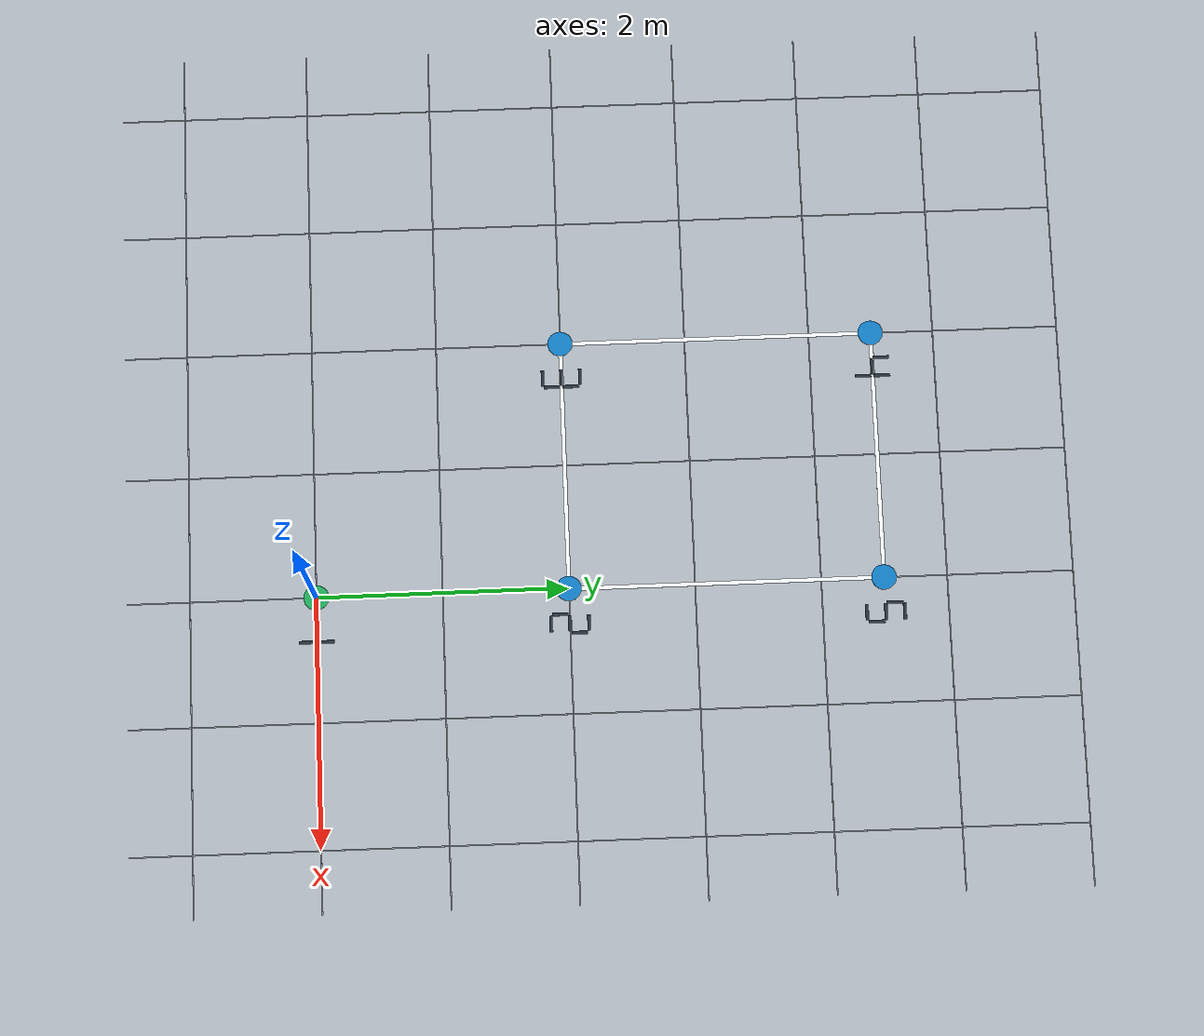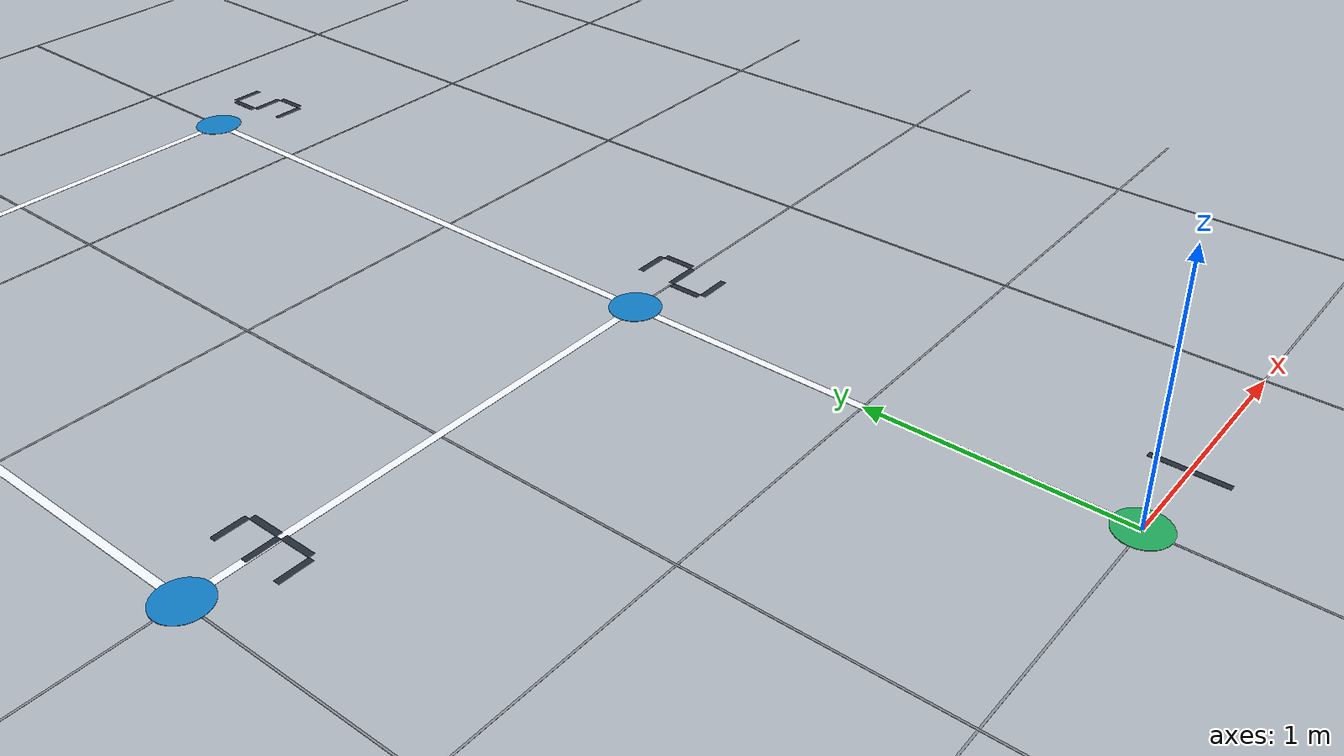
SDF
<?xml version='1.0' encoding='utf-8'?>
<sdf version="1.9">
  <world name="hamr_waypoints">
    <physics name="caster_dart" type="ignored">
      <max_step_size>0.001</max_step_size>
      <real_time_factor>0.5</real_time_factor>
      <dart>
        <collision_detector>ode</collision_detector>
        <solver>
          <solver_type>dantzig</solver_type>
        </solver>
      </dart>
    </physics>
    <gravity>0 0 -9.80665</gravity>
    <plugin filename="gz-sim-physics-system" name="gz::sim::systems::Physics">
      <engine>
        <filename>gz-physics-dartsim-plugin</filename>
      </engine>
    </plugin>
    <plugin filename="gz-sim-user-commands-system" name="gz::sim::systems::UserCommands" />
    <plugin filename="gz-sim-scene-broadcaster-system" name="gz::sim::systems::SceneBroadcaster" />
    <plugin filename="gz-sim-contact-system" name="gz::sim::systems::Contact" />
    <scene>
      <ambient>0.6 0.6 0.6 1</ambient>
      <background>0.17 0.20 0.25 1</background>
      <shadows>false</shadows>
    </scene>
    <model name="ground_plane">
      <static>true</static>
      <link name="ground">
        <collision name="ground_collision">
          <geometry>
            <plane>
              <normal>0 0 1</normal>
              <size>20 20</size>
            </plane>
          </geometry>
          <surface>
            <friction>
              <ode>
                <mu>0.8</mu>
                <mu2>0.8</mu2>
              </ode>
            </friction>
            <bounce>
              <restitution_coefficient>0</restitution_coefficient>
            </bounce>
          </surface>
        </collision>
        <visual name="ground_visual">
          <geometry>
            <plane>
              <normal>0 0 1</normal>
              <size>20 20</size>
            </plane>
          </geometry>
          <material>
            <ambient>0.68 0.71 0.74 1</ambient>
            <diffuse>0.68 0.71 0.74 1</diffuse>
          </material>
        </visual>
      </link>
    </model>
    <light name="sun" type="directional">
      <pose>0 0 10 0 0 0</pose>
      <cast_shadows>false</cast_shadows>
      <diffuse>0.9 0.9 0.9 1</diffuse>
      <specular>0.2 0.2 0.2 1</specular>
      <direction>-0.5 0.3 -1</direction>
      <attenuation>
        <range>1000</range>
        <constant>0.9</constant>
        <linear>0.01</linear>
        <quadratic>0</quadratic>
      </attenuation>
    </light>
    <model name="waypoint_floor_markings">
      <static>true</static>
      <link name="markings">
        <visual name="grid_x_0">
          <pose>-4 2.25 0.001 0 0 1.5707963267948966</pose>
          <geometry>
            <box>
              <size>7.5 0.008 .001</size>
            </box>
          </geometry>
          <material>
            <ambient>0.52 0.56 0.60 1</ambient>
            <diffuse>0.52 0.56 0.60 1</diffuse>
          </material>
        </visual>
        <visual name="grid_x_1">
          <pose>-3 2.25 0.001 0 0 1.5707963267948966</pose>
          <geometry>
            <box>
              <size>7.5 0.008 .001</size>
            </box>
          </geometry>
          <material>
            <ambient>0.52 0.56 0.60 1</ambient>
            <diffuse>0.52 0.56 0.60 1</diffuse>
          </material>
        </visual>
        <visual name="grid_x_2">
          <pose>-2 2.25 0.001 0 0 1.5707963267948966</pose>
          <geometry>
            <box>
              <size>7.5 0.008 .001</size>
            </box>
          </geometry>
          <material>
            <ambient>0.52 0.56 0.60 1</ambient>
            <diffuse>0.52 0.56 0.60 1</diffuse>
          </material>
        </visual>
        <visual name="grid_x_3">
          <pose>-1 2.25 0.001 0 0 1.5707963267948966</pose>
          <geometry>
            <box>
              <size>7.5 0.008 .001</size>
            </box>
          </geometry>
          <material>
            <ambient>0.52 0.56 0.60 1</ambient>
            <diffuse>0.52 0.56 0.60 1</diffuse>
          </material>
        </visual>
        <visual name="grid_x_4">
          <pose>0 2.25 0.001 0 0 1.5707963267948966</pose>
          <geometry>
            <box>
              <size>7.5 0.008 .001</size>
            </box>
          </geometry>
          <material>
            <ambient>0.52 0.56 0.60 1</ambient>
            <diffuse>0.52 0.56 0.60 1</diffuse>
          </material>
        </visual>
        <visual name="grid_x_5">
          <pose>1 2.25 0.001 0 0 1.5707963267948966</pose>
          <geometry>
            <box>
              <size>7.5 0.008 .001</size>
            </box>
          </geometry>
          <material>
            <ambient>0.52 0.56 0.60 1</ambient>
            <diffuse>0.52 0.56 0.60 1</diffuse>
          </material>
        </visual>
        <visual name="grid_x_6">
          <pose>2 2.25 0.001 0 0 1.5707963267948966</pose>
          <geometry>
            <box>
              <size>7.5 0.008 .001</size>
            </box>
          </geometry>
          <material>
            <ambient>0.52 0.56 0.60 1</ambient>
            <diffuse>0.52 0.56 0.60 1</diffuse>
          </material>
        </visual>
        <visual name="grid_y_0">
          <pose>-1 -1 0.001 0 0 0</pose>
          <geometry>
            <box>
              <size>7 0.008 .001</size>
            </box>
          </geometry>
          <material>
            <ambient>0.52 0.56 0.60 1</ambient>
            <diffuse>0.52 0.56 0.60 1</diffuse>
          </material>
        </visual>
        <visual name="grid_y_1">
          <pose>-1 0 0.001 0 0 0</pose>
          <geometry>
            <box>
              <size>7 0.008 .001</size>
            </box>
          </geometry>
          <material>
            <ambient>0.52 0.56 0.60 1</ambient>
            <diffuse>0.52 0.56 0.60 1</diffuse>
          </material>
        </visual>
        <visual name="grid_y_2">
          <pose>-1 1 0.001 0 0 0</pose>
          <geometry>
            <box>
              <size>7 0.008 .001</size>
            </box>
          </geometry>
          <material>
            <ambient>0.52 0.56 0.60 1</ambient>
            <diffuse>0.52 0.56 0.60 1</diffuse>
          </material>
        </visual>
        <visual name="grid_y_3">
          <pose>-1 2 0.001 0 0 0</pose>
          <geometry>
            <box>
              <size>7 0.008 .001</size>
            </box>
          </geometry>
          <material>
            <ambient>0.52 0.56 0.60 1</ambient>
            <diffuse>0.52 0.56 0.60 1</diffuse>
          </material>
        </visual>
        <visual name="grid_y_4">
          <pose>-1 3 0.001 0 0 0</pose>
          <geometry>
            <box>
              <size>7 0.008 .001</size>
            </box>
          </geometry>
          <material>
            <ambient>0.52 0.56 0.60 1</ambient>
            <diffuse>0.52 0.56 0.60 1</diffuse>
          </material>
        </visual>
        <visual name="grid_y_5">
          <pose>-1 4 0.001 0 0 0</pose>
          <geometry>
            <box>
              <size>7 0.008 .001</size>
            </box>
          </geometry>
          <material>
            <ambient>0.52 0.56 0.60 1</ambient>
            <diffuse>0.52 0.56 0.60 1</diffuse>
          </material>
        </visual>
        <visual name="grid_y_6">
          <pose>-1 5 0.001 0 0 0</pose>
          <geometry>
            <box>
              <size>7 0.008 .001</size>
            </box>
          </geometry>
          <material>
            <ambient>0.52 0.56 0.60 1</ambient>
            <diffuse>0.52 0.56 0.60 1</diffuse>
          </material>
        </visual>
        <visual name="grid_y_7">
          <pose>-1 6 0.001 0 0 0</pose>
          <geometry>
            <box>
              <size>7 0.008 .001</size>
            </box>
          </geometry>
          <material>
            <ambient>0.52 0.56 0.60 1</ambient>
            <diffuse>0.52 0.56 0.60 1</diffuse>
          </material>
        </visual>
        <visual name="route_segment_1">
          <pose>0.0 1.0 0.003 0 0 1.5707963267948966</pose>
          <geometry>
            <box>
              <size>2.0 0.032 .001</size>
            </box>
          </geometry>
          <material>
            <ambient>0.95 0.97 1 1</ambient>
            <diffuse>0.95 0.97 1 1</diffuse>
          </material>
        </visual>
        <visual name="route_segment_2">
          <pose>-1.0 2.0 0.003 0 0 3.141592653589793</pose>
          <geometry>
            <box>
              <size>2.0 0.032 .001</size>
            </box>
          </geometry>
          <material>
            <ambient>0.95 0.97 1 1</ambient>
            <diffuse>0.95 0.97 1 1</diffuse>
          </material>
        </visual>
        <visual name="route_segment_3">
          <pose>-2.0 3.25 0.003 0 0 1.5707963267948966</pose>
          <geometry>
            <box>
              <size>2.5 0.032 .001</size>
            </box>
          </geometry>
          <material>
            <ambient>0.95 0.97 1 1</ambient>
            <diffuse>0.95 0.97 1 1</diffuse>
          </material>
        </visual>
        <visual name="route_segment_4">
          <pose>-1.0 4.5 0.003 0 0 0.0</pose>
          <geometry>
            <box>
              <size>2.0 0.032 .001</size>
            </box>
          </geometry>
          <material>
            <ambient>0.95 0.97 1 1</ambient>
            <diffuse>0.95 0.97 1 1</diffuse>
          </material>
        </visual>
        <visual name="route_segment_5">
          <pose>0.0 3.25 0.003 0 0 -1.5707963267948966</pose>
          <geometry>
            <box>
              <size>2.5 0.032 .001</size>
            </box>
          </geometry>
          <material>
            <ambient>0.95 0.97 1 1</ambient>
            <diffuse>0.95 0.97 1 1</diffuse>
          </material>
        </visual>
        <visual name="route_segment_6">
          <pose>0.0 1.0 0.003 0 0 -1.5707963267948966</pose>
          <geometry>
            <box>
              <size>2.0 0.032 .001</size>
            </box>
          </geometry>
          <material>
            <ambient>0.95 0.97 1 1</ambient>
            <diffuse>0.95 0.97 1 1</diffuse>
          </material>
        </visual>
        <visual name="waypoint_1">
          <pose>0.0 0.0 0.005 0 0 0</pose>
          <geometry>
            <cylinder>
              <radius>.10</radius>
              <length>.002</length>
            </cylinder>
          </geometry>
          <material>
            <ambient>0.12 0.65 0.35 1</ambient>
            <diffuse>0.12 0.65 0.35 1</diffuse>
          </material>
        </visual>
        <visual name="label_1_b">
          <pose>0.35500000000000004 0.075 0.006 0 0 1.5707963267948966</pose>
          <geometry>
            <box>
              <size>0.13 0.025 .001</size>
            </box>
          </geometry>
          <material>
            <ambient>0.13 0.17 0.22 1</ambient>
            <diffuse>0.13 0.17 0.22 1</diffuse>
          </material>
        </visual>
        <visual name="label_1_c">
          <pose>0.35500000000000004 -0.075 0.006 0 0 1.5707963267948966</pose>
          <geometry>
            <box>
              <size>0.13 0.025 .001</size>
            </box>
          </geometry>
          <material>
            <ambient>0.13 0.17 0.22 1</ambient>
            <diffuse>0.13 0.17 0.22 1</diffuse>
          </material>
        </visual>
        <visual name="waypoint_2">
          <pose>0.0 2.0 0.005 0 0 0</pose>
          <geometry>
            <cylinder>
              <radius>.10</radius>
              <length>.002</length>
            </cylinder>
          </geometry>
          <material>
            <ambient>0.06 0.48 0.76 1</ambient>
            <diffuse>0.06 0.48 0.76 1</diffuse>
          </material>
        </visual>
        <visual name="label_2_a">
          <pose>0.28 2.15 0.006 0 0 0</pose>
          <geometry>
            <box>
              <size>0.13 0.025 .001</size>
            </box>
          </geometry>
          <material>
            <ambient>0.13 0.17 0.22 1</ambient>
            <diffuse>0.13 0.17 0.22 1</diffuse>
          </material>
        </visual>
        <visual name="label_2_b">
          <pose>0.35500000000000004 2.075 0.006 0 0 1.5707963267948966</pose>
          <geometry>
            <box>
              <size>0.13 0.025 .001</size>
            </box>
          </geometry>
          <material>
            <ambient>0.13 0.17 0.22 1</ambient>
            <diffuse>0.13 0.17 0.22 1</diffuse>
          </material>
        </visual>
        <visual name="label_2_g">
          <pose>0.28 2.0 0.006 0 0 0</pose>
          <geometry>
            <box>
              <size>0.13 0.025 .001</size>
            </box>
          </geometry>
          <material>
            <ambient>0.13 0.17 0.22 1</ambient>
            <diffuse>0.13 0.17 0.22 1</diffuse>
          </material>
        </visual>
        <visual name="label_2_e">
          <pose>0.20500000000000002 1.925 0.006 0 0 1.5707963267948966</pose>
          <geometry>
            <box>
              <size>0.13 0.025 .001</size>
            </box>
          </geometry>
          <material>
            <ambient>0.13 0.17 0.22 1</ambient>
            <diffuse>0.13 0.17 0.22 1</diffuse>
          </material>
        </visual>
        <visual name="label_2_d">
          <pose>0.28 1.85 0.006 0 0 0</pose>
          <geometry>
            <box>
              <size>0.13 0.025 .001</size>
            </box>
          </geometry>
          <material>
            <ambient>0.13 0.17 0.22 1</ambient>
            <diffuse>0.13 0.17 0.22 1</diffuse>
          </material>
        </visual>
        <visual name="waypoint_3">
          <pose>-2.0 2.0 0.005 0 0 0</pose>
          <geometry>
            <cylinder>
              <radius>.10</radius>
              <length>.002</length>
            </cylinder>
          </geometry>
          <material>
            <ambient>0.06 0.48 0.76 1</ambient>
            <diffuse>0.06 0.48 0.76 1</diffuse>
          </material>
        </visual>
        <visual name="label_3_a">
          <pose>-1.72 2.15 0.006 0 0 0</pose>
          <geometry>
            <box>
              <size>0.13 0.025 .001</size>
            </box>
          </geometry>
          <material>
            <ambient>0.13 0.17 0.22 1</ambient>
            <diffuse>0.13 0.17 0.22 1</diffuse>
          </material>
        </visual>
        <visual name="label_3_b">
          <pose>-1.645 2.075 0.006 0 0 1.5707963267948966</pose>
          <geometry>
            <box>
              <size>0.13 0.025 .001</size>
            </box>
          </geometry>
          <material>
            <ambient>0.13 0.17 0.22 1</ambient>
            <diffuse>0.13 0.17 0.22 1</diffuse>
          </material>
        </visual>
        <visual name="label_3_g">
          <pose>-1.72 2.0 0.006 0 0 0</pose>
          <geometry>
            <box>
              <size>0.13 0.025 .001</size>
            </box>
          </geometry>
          <material>
            <ambient>0.13 0.17 0.22 1</ambient>
            <diffuse>0.13 0.17 0.22 1</diffuse>
          </material>
        </visual>
        <visual name="label_3_c">
          <pose>-1.645 1.925 0.006 0 0 1.5707963267948966</pose>
          <geometry>
            <box>
              <size>0.13 0.025 .001</size>
            </box>
          </geometry>
          <material>
            <ambient>0.13 0.17 0.22 1</ambient>
            <diffuse>0.13 0.17 0.22 1</diffuse>
          </material>
        </visual>
        <visual name="label_3_d">
          <pose>-1.72 1.85 0.006 0 0 0</pose>
          <geometry>
            <box>
              <size>0.13 0.025 .001</size>
            </box>
          </geometry>
          <material>
            <ambient>0.13 0.17 0.22 1</ambient>
            <diffuse>0.13 0.17 0.22 1</diffuse>
          </material>
        </visual>
        <visual name="waypoint_4">
          <pose>-2.0 4.5 0.005 0 0 0</pose>
          <geometry>
            <cylinder>
              <radius>.10</radius>
              <length>.002</length>
            </cylinder>
          </geometry>
          <material>
            <ambient>0.06 0.48 0.76 1</ambient>
            <diffuse>0.06 0.48 0.76 1</diffuse>
          </material>
        </visual>
        <visual name="label_4_f">
          <pose>-1.795 4.575 0.006 0 0 1.5707963267948966</pose>
          <geometry>
            <box>
              <size>0.13 0.025 .001</size>
            </box>
          </geometry>
          <material>
            <ambient>0.13 0.17 0.22 1</ambient>
            <diffuse>0.13 0.17 0.22 1</diffuse>
          </material>
        </visual>
        <visual name="label_4_g">
          <pose>-1.72 4.5 0.006 0 0 0</pose>
          <geometry>
            <box>
              <size>0.13 0.025 .001</size>
            </box>
          </geometry>
          <material>
            <ambient>0.13 0.17 0.22 1</ambient>
            <diffuse>0.13 0.17 0.22 1</diffuse>
          </material>
        </visual>
        <visual name="label_4_b">
          <pose>-1.645 4.575 0.006 0 0 1.5707963267948966</pose>
          <geometry>
            <box>
              <size>0.13 0.025 .001</size>
            </box>
          </geometry>
          <material>
            <ambient>0.13 0.17 0.22 1</ambient>
            <diffuse>0.13 0.17 0.22 1</diffuse>
          </material>
        </visual>
        <visual name="label_4_c">
          <pose>-1.645 4.425 0.006 0 0 1.5707963267948966</pose>
          <geometry>
            <box>
              <size>0.13 0.025 .001</size>
            </box>
          </geometry>
          <material>
            <ambient>0.13 0.17 0.22 1</ambient>
            <diffuse>0.13 0.17 0.22 1</diffuse>
          </material>
        </visual>
        <visual name="waypoint_5">
          <pose>0.0 4.5 0.005 0 0 0</pose>
          <geometry>
            <cylinder>
              <radius>.10</radius>
              <length>.002</length>
            </cylinder>
          </geometry>
          <material>
            <ambient>0.06 0.48 0.76 1</ambient>
            <diffuse>0.06 0.48 0.76 1</diffuse>
          </material>
        </visual>
        <visual name="label_5_a">
          <pose>0.28 4.65 0.006 0 0 0</pose>
          <geometry>
            <box>
              <size>0.13 0.025 .001</size>
            </box>
          </geometry>
          <material>
            <ambient>0.13 0.17 0.22 1</ambient>
            <diffuse>0.13 0.17 0.22 1</diffuse>
          </material>
        </visual>
        <visual name="label_5_f">
          <pose>0.20500000000000002 4.575 0.006 0 0 1.5707963267948966</pose>
          <geometry>
            <box>
              <size>0.13 0.025 .001</size>
            </box>
          </geometry>
          <material>
            <ambient>0.13 0.17 0.22 1</ambient>
            <diffuse>0.13 0.17 0.22 1</diffuse>
          </material>
        </visual>
        <visual name="label_5_g">
          <pose>0.28 4.5 0.006 0 0 0</pose>
          <geometry>
            <box>
              <size>0.13 0.025 .001</size>
            </box>
          </geometry>
          <material>
            <ambient>0.13 0.17 0.22 1</ambient>
            <diffuse>0.13 0.17 0.22 1</diffuse>
          </material>
        </visual>
        <visual name="label_5_c">
          <pose>0.35500000000000004 4.425 0.006 0 0 1.5707963267948966</pose>
          <geometry>
            <box>
              <size>0.13 0.025 .001</size>
            </box>
          </geometry>
          <material>
            <ambient>0.13 0.17 0.22 1</ambient>
            <diffuse>0.13 0.17 0.22 1</diffuse>
          </material>
        </visual>
        <visual name="label_5_d">
          <pose>0.28 4.35 0.006 0 0 0</pose>
          <geometry>
            <box>
              <size>0.13 0.025 .001</size>
            </box>
          </geometry>
          <material>
            <ambient>0.13 0.17 0.22 1</ambient>
            <diffuse>0.13 0.17 0.22 1</diffuse>
          </material>
        </visual>
      </link>
    </model>
    <model name="waypoint_recording_camera">
      <static>true</static>
      <pose>5.0 -4.0 8.0 0 0.745580810982 2.335789159506</pose>
      <link name="camera_link">
        <sensor name="overview" type="camera">
          <always_on>true</always_on>
          <update_rate>25</update_rate>
          <topic>/hamr/recording_camera/image</topic>
          <camera>
            <horizontal_fov>0.9</horizontal_fov>
            <image>
              <width>1280</width>
              <height>720</height>
              <format>R8G8B8</format>
            </image>
            <clip>
              <near>0.1</near>
              <far>100</far>
            </clip>
          </camera>
        </sensor>
      </link>
    </model>
    <plugin filename="gz-sim-sensors-system" name="gz::sim::systems::Sensors">
      <render_engine>ogre2</render_engine>
    </plugin>
  </world>
</sdf>
